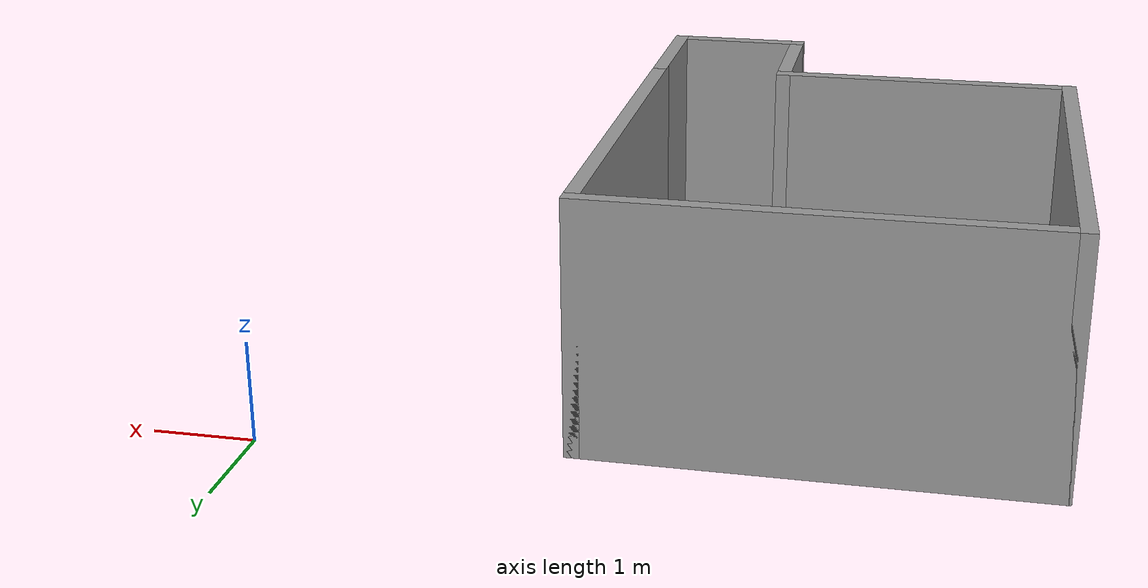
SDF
<?xml version='1.0'?>
<sdf version='1.6'>
  <model name='Room'>
    <pose frame=''>-5.12929 -3.17262 0 0 -0 0</pose>
    <link name='Wall_46'>
      <collision name='Wall_46_Collision'>
        <geometry>
          <box>
            <size>4.5 0.15 2.5</size>
          </box>
        </geometry>
        <pose frame=''>0 0 1.25 0 -0 0</pose>
      </collision>
      <visual name='Wall_46_Visual'>
        <pose frame=''>0 0 1.25 0 -0 0</pose>
        <geometry>
          <box>
            <size>4.5 0.15 2.5</size>
          </box>
        </geometry>
        <material>
          <script>
            <uri>file://media/materials/scripts/gazebo.material</uri>
            <name>Gazebo/Grey</name>
          </script>
          <ambient>1 1 1 1</ambient>
        </material>
      </visual>
      <pose frame=''>0 2.85 0 0 -0 0</pose>
    </link>
    <link name='Wall_47'>
      <collision name='Wall_47_Collision'>
        <geometry>
          <box>
            <size>4.5 0.15 2.5</size>
          </box>
        </geometry>
        <pose frame=''>0 0 1.25 0 -0 0</pose>
      </collision>
      <visual name='Wall_47_Visual'>
        <pose frame=''>0 0 1.25 0 -0 0</pose>
        <geometry>
          <box>
            <size>4.5 0.15 2.5</size>
          </box>
        </geometry>
        <material>
          <script>
            <uri>file://media/materials/scripts/gazebo.material</uri>
            <name>Gazebo/Grey</name>
          </script>
          <ambient>1 1 1 1</ambient>
        </material>
      </visual>
      <pose frame=''>2.175 0.675 0 0 0 -1.5708</pose>
    </link>
    <link name='Wall_49'>
      <collision name='Wall_49_Collision'>
        <geometry>
          <box>
            <size>4.5 0.15 2.5</size>
          </box>
        </geometry>
        <pose frame=''>0 0 1.25 0 -0 0</pose>
      </collision>
      <visual name='Wall_49_Visual'>
        <pose frame=''>0 0 1.25 0 -0 0</pose>
        <geometry>
          <box>
            <size>4.5 0.15 2.5</size>
          </box>
        </geometry>
        <material>
          <script>
            <uri>file://media/materials/scripts/gazebo.material</uri>
            <name>Gazebo/Grey</name>
          </script>
          <ambient>1 1 1 1</ambient>
        </material>
      </visual>
      <pose frame=''>-2.175 0.675 0 0 0 -1.5708</pose>
    </link>
    <link name='Wall_51'>
      <collision name='Wall_51_Collision'>
        <geometry>
          <box>
            <size>1.5 0.15 2.5</size>
          </box>
        </geometry>
        <pose frame=''>0 0 1.25 0 -0 0</pose>
      </collision>
      <visual name='Wall_51_Visual'>
        <pose frame=''>0 0 1.25 0 -0 0</pose>
        <geometry>
          <box>
            <size>1.5 0.15 2.5</size>
          </box>
        </geometry>
        <material>
          <script>
            <uri>file://media/materials/scripts/gazebo.material</uri>
            <name>Gazebo/Grey</name>
          </script>
          <ambient>1 1 1 1</ambient>
        </material>
      </visual>
      <pose frame=''>2.175 -2.175 0 0 0 -1.5708</pose>
    </link>
    <link name='Wall_52'>
      <collision name='Wall_52_Collision'>
        <geometry>
          <box>
            <size>1.5 0.15 2.5</size>
          </box>
        </geometry>
        <pose frame=''>0 0 1.25 0 -0 0</pose>
      </collision>
      <visual name='Wall_52_Visual'>
        <pose frame=''>0 0 1.25 0 -0 0</pose>
        <geometry>
          <box>
            <size>1.5 0.15 2.5</size>
          </box>
        </geometry>
        <material>
          <script>
            <uri>file://media/materials/scripts/gazebo.material</uri>
            <name>Gazebo/Grey</name>
          </script>
          <ambient>1 1 1 1</ambient>
        </material>
      </visual>
      <pose frame=''>1.5 -2.85 0 0 -0 3.14159</pose>
    </link>
    <link name='Wall_53'>
      <collision name='Wall_53_Collision'>
        <geometry>
          <box>
            <size>1.5 0.15 2.5</size>
          </box>
        </geometry>
        <pose frame=''>0 0 1.25 0 -0 0</pose>
      </collision>
      <visual name='Wall_53_Visual'>
        <pose frame=''>0 0 1.25 0 -0 0</pose>
        <geometry>
          <box>
            <size>1.5 0.15 2.5</size>
          </box>
        </geometry>
        <material>
          <script>
            <uri>file://media/materials/scripts/gazebo.material</uri>
            <name>Gazebo/Grey</name>
          </script>
          <ambient>1 1 1 1</ambient>
        </material>
      </visual>
      <pose frame=''>0.825 -2.175 0 0 -0 1.5708</pose>
    </link>
    <link name='Wall_54'>
      <collision name='Wall_54_Collision'>
        <geometry>
          <box>
            <size>3.15 0.15 2.5</size>
          </box>
        </geometry>
        <pose frame=''>0 0 1.25 0 -0 0</pose>
      </collision>
      <visual name='Wall_54_Visual'>
        <pose frame=''>0 0 1.25 0 -0 0</pose>
        <geometry>
          <box>
            <size>3.15 0.15 2.5</size>
          </box>
        </geometry>
        <material>
          <script>
            <uri>file://media/materials/scripts/gazebo.material</uri>
            <name>Gazebo/Grey</name>
          </script>
          <ambient>1 1 1 1</ambient>
        </material>
      </visual>
      <pose frame=''>-0.675 -1.5 0 0 -0 3.14159</pose>
    </link>
    <static>1</static>
  </model>
</sdf>
